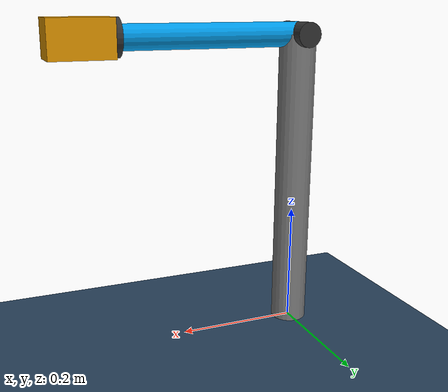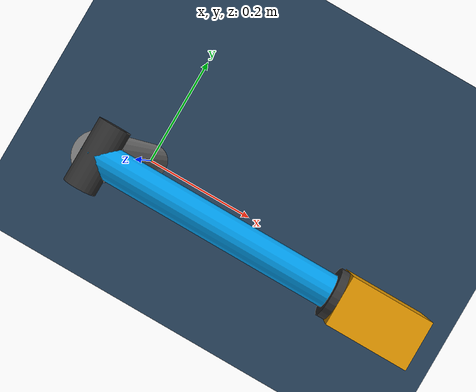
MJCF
<mujoco model="force_torque_sensor">
  <statistic center="0 0 0.1" extent="0.6" meansize=".05"/>

  <visual>
    <headlight diffuse="0.6 0.6 0.6" ambient="0.3 0.3 0.3" specular="0 0 0"/>
    <rgba haze="0.15 0.25 0.35 1"/>
    <global azimuth="-20" elevation="-20" ellipsoidinertia="true"/>
  </visual>

  <asset>
    <texture type="skybox" builtin="gradient" rgb1="0.3 0.5 0.7" rgb2="0 0 0" width="512" height="3072"/>
    <texture type="2d" name="groundplane" builtin="checker" mark="edge" rgb1="0.2 0.3 0.4" rgb2="0.1 0.2 0.3"
      markrgb="0.8 0.8 0.8" width="300" height="300"/>
    <material name="groundplane" texture="groundplane" texuniform="true" texrepeat="5 5" reflectance="0.2"/>
  </asset>

  <option gravity="0 0 -9.81" timestep="0.002"/>

  <default>
    <joint damping="0.1"/>
    <geom contype="0" conaffinity="0"/>
  </default>

  <worldbody>
    <light pos="0 0 1.5" dir="0 0 -1" directional="true"/>
    <geom name="floor" size="0 0 0.05" type="plane" material="groundplane"/>

    <geom name="post" type="cylinder" pos="0 0 0.25" size="0.03 0.25" rgba="0.5 0.5 0.5 1"/>

    <body name="arm" pos="0 0 0.5">
      <joint name="shoulder" type="hinge" axis="0 1 0" range="-90 90" solreflimit="0.004 1"/>
      <geom name="axle" type="cylinder" fromto="0 -0.04 0 0 0.04 0" size="0.02" rgba="0.2 0.2 0.2 1"/>
      <geom name="link" type="capsule" fromto="0 0 0 0.3 0 0" size="0.02" rgba="0 0.6 0.9 1" mass="0.5"/>

      <!-- The payload is welded to the arm (no joint). Force and torque sensors report the interaction
           wrench between the site's body and its parent, expressed in the site frame. -->
      <body name="payload" pos="0.3 0 0">
        <geom name="flange" type="cylinder" fromto="0 0 0 0.01 0 0" size="0.03" rgba="0.2 0.2 0.2 1" mass="0.05"/>
        <geom name="weight" type="box" pos="0.06 0 0" size="0.05 0.03 0.03" rgba="0.9 0.6 0 1" mass="1"/>
        <site name="wrist" size="0.015" rgba="1 0.3 0 1"/>
      </body>
    </body>
  </worldbody>

  <sensor>
    <force name="wrist_force" site="wrist"/>
    <torque name="wrist_torque" site="wrist"/>
    <jointpos name="shoulder_pos" joint="shoulder"/>
    <actuatorfrc name="shoulder_torque" actuator="position_servo"/>
  </sensor>

  <actuator>
    <position name="position_servo" joint="shoulder" kp="50" kv="5" ctrlrange="-1.57 1.57"/>
  </actuator>
</mujoco>
